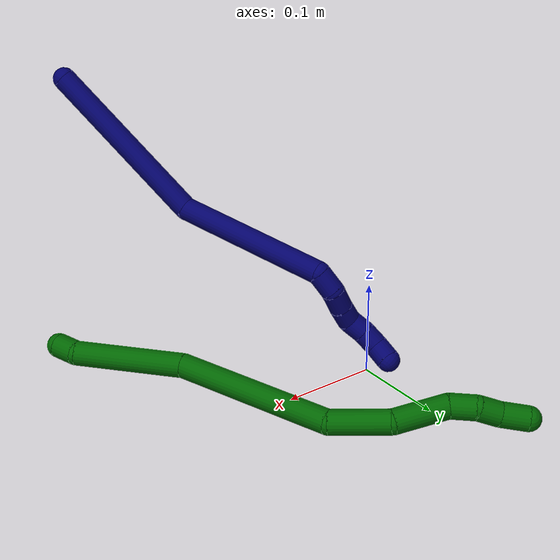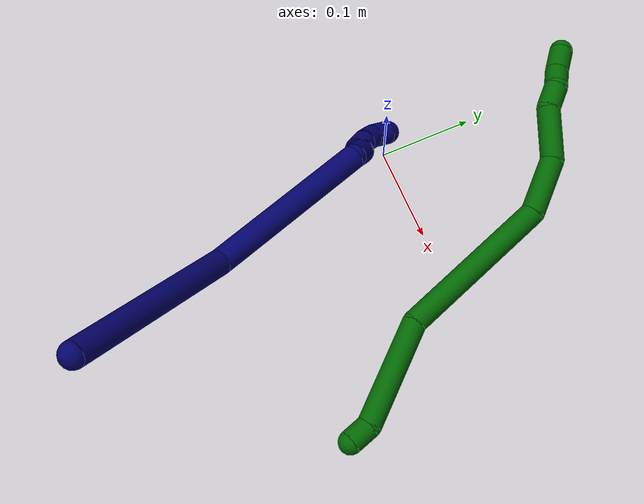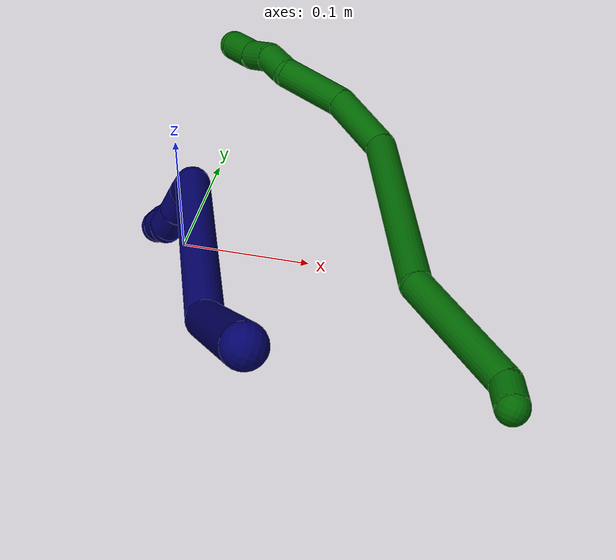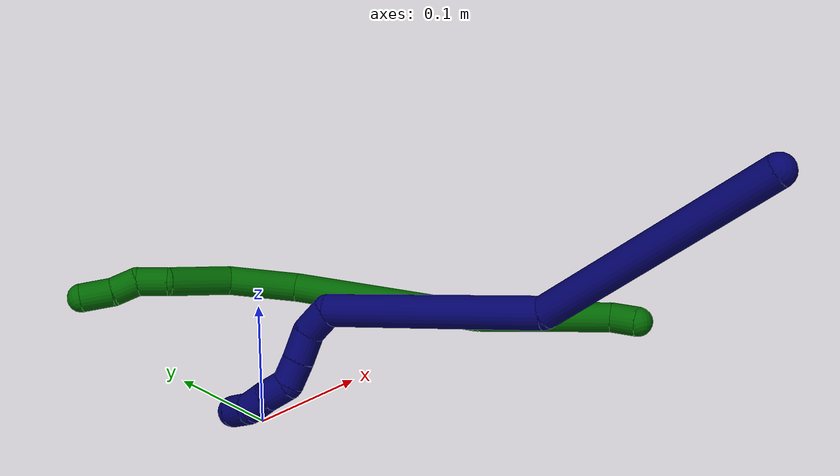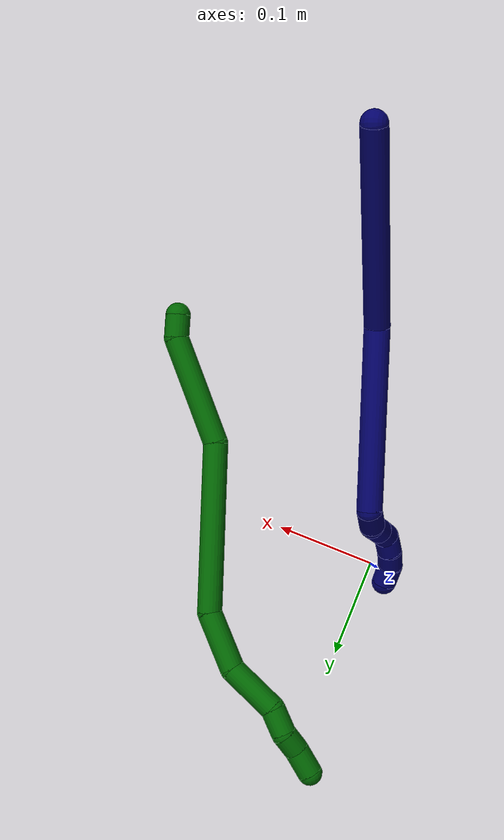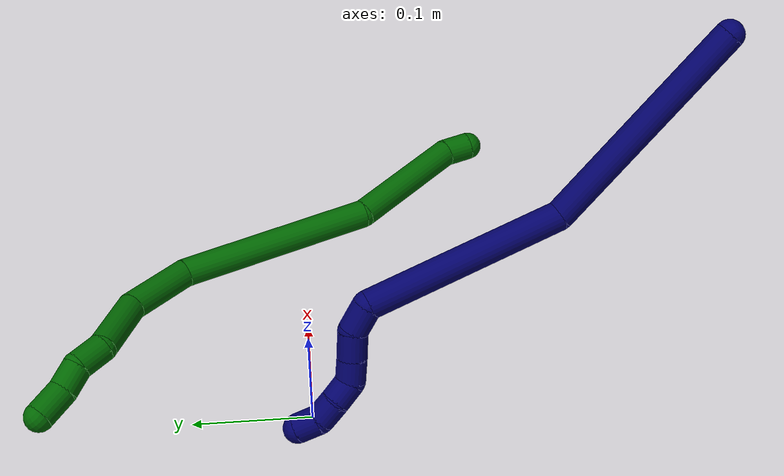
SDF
<sdf version="1.7">
 <world name="default">
  <model name="6">
   <static>0</static>
   <link name="6">
    <collision name="collision-cylinder-e_1_1_4">
     <pose>0.002653 0.00986 0.005705 -1.04624 0.228839 -0.132359</pose>
     <geometry><cylinder><radius>0.0125</radius><length>0.023394</length></cylinder></geometry>
     <surface>
      <friction><ode><mu>1.16</mu><mu2>1.16</mu2><slip1>0</slip1><slip2>0</slip2></ode></friction>
      <contact><ode><kp>1e+06</kp><kd>1</kd><max_vel>0</max_vel><min_depth>0.001</min_depth></ode></contact>
     </surface>
    </collision>
    <visual name="visual-cylinder-e_1_1_4">
     <pose>0.002653 0.00986 0.005705 -1.04624 0.228839 -0.132359</pose>
     <geometry><cylinder><radius>0.0125</radius><length>0.023394</length></cylinder></geometry>
     <material><ambient>0 0.392157 0.003922 1</ambient></material>
    </visual>
    <collision name="collision-cylinder-e_2_4_5">
     <pose>-0.001736 0.073071 0.026947 -1.28743 -0.126075 0.094653</pose>
     <geometry><cylinder><radius>0.0125</radius><length>0.112023</length></cylinder></geometry>
     <surface>
      <friction><ode><mu>1.16</mu><mu2>1.16</mu2><slip1>0</slip1><slip2>0</slip2></ode></friction>
      <contact><ode><kp>1e+06</kp><kd>1</kd><max_vel>0</max_vel><min_depth>0.001</min_depth></ode></contact>
     </surface>
    </collision>
    <visual name="visual-cylinder-e_2_4_5">
     <pose>-0.001736 0.073071 0.026947 -1.28743 -0.126075 0.094653</pose>
     <geometry><cylinder><radius>0.0125</radius><length>0.112023</length></cylinder></geometry>
     <material><ambient>0 0.392157 0.003922 1</ambient></material>
    </visual>
    <collision name="collision-cylinder-e_3_5_6">
     <pose>0.007842 0.199363 0.083477 -1.05878 0.196094 -0.114976</pose>
     <geometry><cylinder><radius>0.0125</radius><length>0.170613</length></cylinder></geometry>
     <surface>
      <friction><ode><mu>1.16</mu><mu2>1.16</mu2><slip1>0</slip1><slip2>0</slip2></ode></friction>
      <contact><ode><kp>1e+06</kp><kd>1</kd><max_vel>0</max_vel><min_depth>0.001</min_depth></ode></contact>
     </surface>
    </collision>
    <visual name="visual-cylinder-e_3_5_6">
     <pose>0.007842 0.199363 0.083477 -1.05878 0.196094 -0.114976</pose>
     <geometry><cylinder><radius>0.0125</radius><length>0.170613</length></cylinder></geometry>
     <material><ambient>0 0.392157 0.003922 1</ambient></material>
    </visual>
    <collision name="collision-cylinder-e_4_6_7">
     <pose>0.01745 0.299986 0.134881 -1.21108 -0.232826 0.161565</pose>
     <geometry><cylinder><radius>0.0125</radius><length>0.060787</length></cylinder></geometry>
     <surface>
      <friction><ode><mu>1.16</mu><mu2>1.16</mu2><slip1>0</slip1><slip2>0</slip2></ode></friction>
      <contact><ode><kp>1e+06</kp><kd>1</kd><max_vel>0</max_vel><min_depth>0.001</min_depth></ode></contact>
     </surface>
    </collision>
    <visual name="visual-cylinder-e_4_6_7">
     <pose>0.01745 0.299986 0.134881 -1.21108 -0.232826 0.161565</pose>
     <geometry><cylinder><radius>0.0125</radius><length>0.060787</length></cylinder></geometry>
     <material><ambient>0 0.392157 0.003922 1</ambient></material>
    </visual>
    <collision name="collision-cylinder-e_5_7_8">
     <pose>-0.005048 0.350609 0.147996 -1.45343 -0.590543 0.528182</pose>
     <geometry><cylinder><radius>0.0125</radius><length>0.055624</length></cylinder></geometry>
     <surface>
      <friction><ode><mu>1.16</mu><mu2>1.16</mu2><slip1>0</slip1><slip2>0</slip2></ode></friction>
      <contact><ode><kp>1e+06</kp><kd>1</kd><max_vel>0</max_vel><min_depth>0.001</min_depth></ode></contact>
     </surface>
    </collision>
    <visual name="visual-cylinder-e_5_7_8">
     <pose>-0.005048 0.350609 0.147996 -1.45343 -0.590543 0.528182</pose>
     <geometry><cylinder><radius>0.0125</radius><length>0.055624</length></cylinder></geometry>
     <material><ambient>0 0.392157 0.003922 1</ambient></material>
    </visual>
    <collision name="collision-cylinder-e_6_8_9">
     <pose>-0.022995 0.386246 0.15423 -1.29966 -0.184625 0.140472</pose>
     <geometry><cylinder><radius>0.0125</radius><length>0.026807</length></cylinder></geometry>
     <surface>
      <friction><ode><mu>1.16</mu><mu2>1.16</mu2><slip1>0</slip1><slip2>0</slip2></ode></friction>
      <contact><ode><kp>1e+06</kp><kd>1</kd><max_vel>0</max_vel><min_depth>0.001</min_depth></ode></contact>
     </surface>
    </collision>
    <visual name="visual-cylinder-e_6_8_9">
     <pose>-0.022995 0.386246 0.15423 -1.29966 -0.184625 0.140472</pose>
     <geometry><cylinder><radius>0.0125</radius><length>0.026807</length></cylinder></geometry>
     <material><ambient>0 0.392157 0.003922 1</ambient></material>
    </visual>
    <collision name="collision-cylinder-e_7_9_10">
     <pose>-0.026661 0.410181 0.156099 -1.71744 -0.105686 0.122404</pose>
     <geometry><cylinder><radius>0.0125</radius><length>0.022852</length></cylinder></geometry>
     <surface>
      <friction><ode><mu>1.16</mu><mu2>1.16</mu2><slip1>0</slip1><slip2>0</slip2></ode></friction>
      <contact><ode><kp>1e+06</kp><kd>1</kd><max_vel>0</max_vel><min_depth>0.001</min_depth></ode></contact>
     </surface>
    </collision>
    <visual name="visual-cylinder-e_7_9_10">
     <pose>-0.026661 0.410181 0.156099 -1.71744 -0.105686 0.122404</pose>
     <geometry><cylinder><radius>0.0125</radius><length>0.022852</length></cylinder></geometry>
     <material><ambient>0 0.392157 0.003922 1</ambient></material>
    </visual>
    <collision name="collision-cylinder-e_8_10_2">
     <pose>-0.030156 0.435142 0.155486 -1.49457 -0.16486 0.152798</pose>
     <geometry><cylinder><radius>0.0125</radius><length>0.0279</length></cylinder></geometry>
     <surface>
      <friction><ode><mu>1.16</mu><mu2>1.16</mu2><slip1>0</slip1><slip2>0</slip2></ode></friction>
      <contact><ode><kp>1e+06</kp><kd>1</kd><max_vel>0</max_vel><min_depth>0.001</min_depth></ode></contact>
     </surface>
    </collision>
    <visual name="visual-cylinder-e_8_10_2">
     <pose>-0.030156 0.435142 0.155486 -1.49457 -0.16486 0.152798</pose>
     <geometry><cylinder><radius>0.0125</radius><length>0.0279</length></cylinder></geometry>
     <material><ambient>0 0.392157 0.003922 1</ambient></material>
    </visual>
    <collision name="collision-sphere-2">
     <pose>-0.032445 0.448863 0.156534 0 -0 0</pose>
     <geometry><sphere><radius>0.0125</radius></sphere></geometry>
     <surface>
      <friction><ode><mu>1.16</mu><mu2>1.16</mu2><slip1>0</slip1><slip2>0</slip2></ode></friction>
      <contact><ode><kp>1e+06</kp><kd>1</kd><max_vel>0</max_vel><min_depth>0.001</min_depth></ode></contact>
     </surface>
    </collision>
    <visual name="visual-sphere-2">
     <pose>-0.032445 0.448863 0.156534 0 -0 0</pose>
     <geometry><sphere><radius>0.0125</radius></sphere></geometry>
     <material><ambient>0 0.392157 0.003922 1</ambient></material>
    </visual>
    <collision name="collision-sphere-10">
     <pose>-0.027866 0.421421 0.154438 0 -0 0</pose>
     <geometry><sphere><radius>0.0125</radius></sphere></geometry>
     <surface>
      <friction><ode><mu>1.16</mu><mu2>1.16</mu2><slip1>0</slip1><slip2>0</slip2></ode></friction>
      <contact><ode><kp>1e+06</kp><kd>1</kd><max_vel>0</max_vel><min_depth>0.001</min_depth></ode></contact>
     </surface>
    </collision>
    <visual name="visual-sphere-10">
     <pose>-0.027866 0.421421 0.154438 0 -0 0</pose>
     <geometry><sphere><radius>0.0125</radius></sphere></geometry>
     <material><ambient>0 0.392157 0.003922 1</ambient></material>
    </visual>
    <collision name="collision-sphere-9">
     <pose>-0.025455 0.39894 0.157759 0 -0 0</pose>
     <geometry><sphere><radius>0.0125</radius></sphere></geometry>
     <surface>
      <friction><ode><mu>1.16</mu><mu2>1.16</mu2><slip1>0</slip1><slip2>0</slip2></ode></friction>
      <contact><ode><kp>1e+06</kp><kd>1</kd><max_vel>0</max_vel><min_depth>0.001</min_depth></ode></contact>
     </surface>
    </collision>
    <visual name="visual-sphere-9">
     <pose>-0.025455 0.39894 0.157759 0 -0 0</pose>
     <geometry><sphere><radius>0.0125</radius></sphere></geometry>
     <material><ambient>0 0.392157 0.003922 1</ambient></material>
    </visual>
    <collision name="collision-sphere-4">
     <pose>0.005307 0.01972 0.011411 0 -0 0</pose>
     <geometry><sphere><radius>0.0125</radius></sphere></geometry>
     <surface>
      <friction><ode><mu>1.16</mu><mu2>1.16</mu2><slip1>0</slip1><slip2>0</slip2></ode></friction>
      <contact><ode><kp>1e+06</kp><kd>1</kd><max_vel>0</max_vel><min_depth>0.001</min_depth></ode></contact>
     </surface>
    </collision>
    <visual name="visual-sphere-4">
     <pose>0.005307 0.01972 0.011411 0 -0 0</pose>
     <geometry><sphere><radius>0.0125</radius></sphere></geometry>
     <material><ambient>0 0.392157 0.003922 1</ambient></material>
    </visual>
    <collision name="collision-sphere-1">
     <geometry><sphere><radius>0.0125</radius></sphere></geometry>
     <surface>
      <friction><ode><mu>1.16</mu><mu2>1.16</mu2><slip1>0</slip1><slip2>0</slip2></ode></friction>
      <contact><ode><kp>1e+06</kp><kd>1</kd><max_vel>0</max_vel><min_depth>0.001</min_depth></ode></contact>
     </surface>
    </collision>
    <visual name="visual-sphere-1">
     <geometry><sphere><radius>0.0125</radius></sphere></geometry>
     <material><ambient>0 0.392157 0.003922 1</ambient></material>
    </visual>
    <collision name="collision-sphere-8">
     <pose>-0.020534 0.373552 0.150701 0 -0 0</pose>
     <geometry><sphere><radius>0.0125</radius></sphere></geometry>
     <surface>
      <friction><ode><mu>1.16</mu><mu2>1.16</mu2><slip1>0</slip1><slip2>0</slip2></ode></friction>
      <contact><ode><kp>1e+06</kp><kd>1</kd><max_vel>0</max_vel><min_depth>0.001</min_depth></ode></contact>
     </surface>
    </collision>
    <visual name="visual-sphere-8">
     <pose>-0.020534 0.373552 0.150701 0 -0 0</pose>
     <geometry><sphere><radius>0.0125</radius></sphere></geometry>
     <material><ambient>0 0.392157 0.003922 1</ambient></material>
    </visual>
    <collision name="collision-sphere-5">
     <pose>-0.008779 0.126422 0.042483 0 -0 0</pose>
     <geometry><sphere><radius>0.0125</radius></sphere></geometry>
     <surface>
      <friction><ode><mu>1.16</mu><mu2>1.16</mu2><slip1>0</slip1><slip2>0</slip2></ode></friction>
      <contact><ode><kp>1e+06</kp><kd>1</kd><max_vel>0</max_vel><min_depth>0.001</min_depth></ode></contact>
     </surface>
    </collision>
    <visual name="visual-sphere-5">
     <pose>-0.008779 0.126422 0.042483 0 -0 0</pose>
     <geometry><sphere><radius>0.0125</radius></sphere></geometry>
     <material><ambient>0 0.392157 0.003922 1</ambient></material>
    </visual>
    <collision name="collision-sphere-6">
     <pose>0.024463 0.272305 0.124471 0 -0 0</pose>
     <geometry><sphere><radius>0.0125</radius></sphere></geometry>
     <surface>
      <friction><ode><mu>1.16</mu><mu2>1.16</mu2><slip1>0</slip1><slip2>0</slip2></ode></friction>
      <contact><ode><kp>1e+06</kp><kd>1</kd><max_vel>0</max_vel><min_depth>0.001</min_depth></ode></contact>
     </surface>
    </collision>
    <visual name="visual-sphere-6">
     <pose>0.024463 0.272305 0.124471 0 -0 0</pose>
     <geometry><sphere><radius>0.0125</radius></sphere></geometry>
     <material><ambient>0 0.392157 0.003922 1</ambient></material>
    </visual>
    <collision name="collision-sphere-7">
     <pose>0.010438 0.327666 0.145291 0 -0 0</pose>
     <geometry><sphere><radius>0.0125</radius></sphere></geometry>
     <surface>
      <friction><ode><mu>1.16</mu><mu2>1.16</mu2><slip1>0</slip1><slip2>0</slip2></ode></friction>
      <contact><ode><kp>1e+06</kp><kd>1</kd><max_vel>0</max_vel><min_depth>0.001</min_depth></ode></contact>
     </surface>
    </collision>
    <visual name="visual-sphere-7">
     <pose>0.010438 0.327666 0.145291 0 -0 0</pose>
     <geometry><sphere><radius>0.0125</radius></sphere></geometry>
     <material><ambient>0 0.392157 0.003922 1</ambient></material>
    </visual>
    <inertial>
     <pose>-0.000163 0.224072 0.09173 0 -0 0</pose>
     <mass>0.5</mass>
     <inertia>
      <ixx>0.000544</ixx>
      <ixy>0</ixy>
      <ixz>0</ixz>
      <iyy>0.000274</iyy>
      <iyz>0</iyz>
      <izz>-0.000557</izz>
     </inertia>
    </inertial>
   </link>
   <pose>0.274856 -0.16079 0.049123 -0.398884 0.649668 0.566539</pose>
  </model>
  <model name="7">
   <static>0</static>
   <link name="7">
    <collision name="collision-cylinder-e_1_1_4">
     <pose>-0.087643 0.041512 0.015465 -1.21418 -1.1028 0.807469</pose>
     <geometry><cylinder><radius>0.0125</radius><length>0.196405</length></cylinder></geometry>
     <surface>
      <friction><ode><mu>1.16</mu><mu2>1.16</mu2><slip1>0</slip1><slip2>0</slip2></ode></friction>
      <contact><ode><kp>1e+06</kp><kd>1</kd><max_vel>0</max_vel><min_depth>0.001</min_depth></ode></contact>
     </surface>
    </collision>
    <visual name="visual-cylinder-e_1_1_4">
     <pose>-0.087643 0.041512 0.015465 -1.21418 -1.1028 0.807469</pose>
     <geometry><cylinder><radius>0.0125</radius><length>0.196405</length></cylinder></geometry>
     <material><ambient>0.003922 0 0.403922 1</ambient></material>
    </visual>
    <collision name="collision-cylinder-e_2_4_5">
     <pose>-0.262282 0.077887 0.032055 1.35509 -1.51043 -1.2965</pose>
     <geometry><cylinder><radius>0.0125</radius><length>0.174307</length></cylinder></geometry>
     <surface>
      <friction><ode><mu>1.16</mu><mu2>1.16</mu2><slip1>0</slip1><slip2>0</slip2></ode></friction>
      <contact><ode><kp>1e+06</kp><kd>1</kd><max_vel>0</max_vel><min_depth>0.001</min_depth></ode></contact>
     </surface>
    </collision>
    <visual name="visual-cylinder-e_2_4_5">
     <pose>-0.262282 0.077887 0.032055 1.35509 -1.51043 -1.2965</pose>
     <geometry><cylinder><radius>0.0125</radius><length>0.174307</length></cylinder></geometry>
     <material><ambient>0.003922 0 0.403922 1</ambient></material>
    </visual>
    <collision name="collision-cylinder-e_3_5_6">
     <pose>-0.358702 0.080394 0.034937 -1.34485 -0.876838 0.714563</pose>
     <geometry><cylinder><radius>0.0125</radius><length>0.024523</length></cylinder></geometry>
     <surface>
      <friction><ode><mu>1.16</mu><mu2>1.16</mu2><slip1>0</slip1><slip2>0</slip2></ode></friction>
      <contact><ode><kp>1e+06</kp><kd>1</kd><max_vel>0</max_vel><min_depth>0.001</min_depth></ode></contact>
     </surface>
    </collision>
    <visual name="visual-cylinder-e_3_5_6">
     <pose>-0.358702 0.080394 0.034937 -1.34485 -0.876838 0.714563</pose>
     <geometry><cylinder><radius>0.0125</radius><length>0.024523</length></cylinder></geometry>
     <material><ambient>0.003922 0 0.403922 1</ambient></material>
    </visual>
    <collision name="collision-cylinder-e_4_6_7">
     <pose>-0.373065 0.098758 0.037308 -1.51361 -0.43093 0.407641</pose>
     <geometry><cylinder><radius>0.0125</radius><length>0.023639</length></cylinder></geometry>
     <surface>
      <friction><ode><mu>1.16</mu><mu2>1.16</mu2><slip1>0</slip1><slip2>0</slip2></ode></friction>
      <contact><ode><kp>1e+06</kp><kd>1</kd><max_vel>0</max_vel><min_depth>0.001</min_depth></ode></contact>
     </surface>
    </collision>
    <visual name="visual-cylinder-e_4_6_7">
     <pose>-0.373065 0.098758 0.037308 -1.51361 -0.43093 0.407641</pose>
     <geometry><cylinder><radius>0.0125</radius><length>0.023639</length></cylinder></geometry>
     <material><ambient>0.003922 0 0.403922 1</ambient></material>
    </visual>
    <collision name="collision-cylinder-e_5_7_8">
     <pose>-0.382779 0.118642 0.03804 -1.55789 -0.480515 0.474582</pose>
     <geometry><cylinder><radius>0.0125</radius><length>0.020667</length></cylinder></geometry>
     <surface>
      <friction><ode><mu>1.16</mu><mu2>1.16</mu2><slip1>0</slip1><slip2>0</slip2></ode></friction>
      <contact><ode><kp>1e+06</kp><kd>1</kd><max_vel>0</max_vel><min_depth>0.001</min_depth></ode></contact>
     </surface>
    </collision>
    <visual name="visual-cylinder-e_5_7_8">
     <pose>-0.382779 0.118642 0.03804 -1.55789 -0.480515 0.474582</pose>
     <geometry><cylinder><radius>0.0125</radius><length>0.020667</length></cylinder></geometry>
     <material><ambient>0.003922 0 0.403922 1</ambient></material>
    </visual>
    <collision name="collision-cylinder-e_6_8_9">
     <pose>-0.396584 0.132206 0.03805 -1.59541 -1.11714 1.13939</pose>
     <geometry><cylinder><radius>0.0125</radius><length>0.02009</length></cylinder></geometry>
     <surface>
      <friction><ode><mu>1.16</mu><mu2>1.16</mu2><slip1>0</slip1><slip2>0</slip2></ode></friction>
      <contact><ode><kp>1e+06</kp><kd>1</kd><max_vel>0</max_vel><min_depth>0.001</min_depth></ode></contact>
     </surface>
    </collision>
    <visual name="visual-cylinder-e_6_8_9">
     <pose>-0.396584 0.132206 0.03805 -1.59541 -1.11714 1.13939</pose>
     <geometry><cylinder><radius>0.0125</radius><length>0.02009</length></cylinder></geometry>
     <material><ambient>0.003922 0 0.403922 1</ambient></material>
    </visual>
    <collision name="collision-cylinder-e_7_9_10">
     <pose>-0.41436 0.141262 0.039382 -1.27074 -1.06252 0.817742</pose>
     <geometry><cylinder><radius>0.0125</radius><length>0.020025</length></cylinder></geometry>
     <surface>
      <friction><ode><mu>1.16</mu><mu2>1.16</mu2><slip1>0</slip1><slip2>0</slip2></ode></friction>
      <contact><ode><kp>1e+06</kp><kd>1</kd><max_vel>0</max_vel><min_depth>0.001</min_depth></ode></contact>
     </surface>
    </collision>
    <visual name="visual-cylinder-e_7_9_10">
     <pose>-0.41436 0.141262 0.039382 -1.27074 -1.06252 0.817742</pose>
     <geometry><cylinder><radius>0.0125</radius><length>0.020025</length></cylinder></geometry>
     <material><ambient>0.003922 0 0.403922 1</ambient></material>
    </visual>
    <collision name="collision-cylinder-e_8_10_2">
     <pose>-0.432517 0.146752 0.044592 -0.218125 -1.18144 0.146595</pose>
     <geometry><cylinder><radius>0.0125</radius><length>0.020344</length></cylinder></geometry>
     <surface>
      <friction><ode><mu>1.16</mu><mu2>1.16</mu2><slip1>0</slip1><slip2>0</slip2></ode></friction>
      <contact><ode><kp>1e+06</kp><kd>1</kd><max_vel>0</max_vel><min_depth>0.001</min_depth></ode></contact>
     </surface>
    </collision>
    <visual name="visual-cylinder-e_8_10_2">
     <pose>-0.432517 0.146752 0.044592 -0.218125 -1.18144 0.146595</pose>
     <geometry><cylinder><radius>0.0125</radius><length>0.020344</length></cylinder></geometry>
     <material><ambient>0.003922 0 0.403922 1</ambient></material>
    </visual>
    <collision name="collision-sphere-2">
     <pose>-0.441928 0.147588 0.048362 0 -0 0</pose>
     <geometry><sphere><radius>0.0125</radius></sphere></geometry>
     <surface>
      <friction><ode><mu>1.16</mu><mu2>1.16</mu2><slip1>0</slip1><slip2>0</slip2></ode></friction>
      <contact><ode><kp>1e+06</kp><kd>1</kd><max_vel>0</max_vel><min_depth>0.001</min_depth></ode></contact>
     </surface>
    </collision>
    <visual name="visual-sphere-2">
     <pose>-0.441928 0.147588 0.048362 0 -0 0</pose>
     <geometry><sphere><radius>0.0125</radius></sphere></geometry>
     <material><ambient>0.003922 0 0.403922 1</ambient></material>
    </visual>
    <collision name="collision-sphere-10">
     <pose>-0.423107 0.145917 0.040822 0 -0 0</pose>
     <geometry><sphere><radius>0.0125</radius></sphere></geometry>
     <surface>
      <friction><ode><mu>1.16</mu><mu2>1.16</mu2><slip1>0</slip1><slip2>0</slip2></ode></friction>
      <contact><ode><kp>1e+06</kp><kd>1</kd><max_vel>0</max_vel><min_depth>0.001</min_depth></ode></contact>
     </surface>
    </collision>
    <visual name="visual-sphere-10">
     <pose>-0.423107 0.145917 0.040822 0 -0 0</pose>
     <geometry><sphere><radius>0.0125</radius></sphere></geometry>
     <material><ambient>0.003922 0 0.403922 1</ambient></material>
    </visual>
    <collision name="collision-sphere-9">
     <pose>-0.405613 0.136607 0.037942 0 -0 0</pose>
     <geometry><sphere><radius>0.0125</radius></sphere></geometry>
     <surface>
      <friction><ode><mu>1.16</mu><mu2>1.16</mu2><slip1>0</slip1><slip2>0</slip2></ode></friction>
      <contact><ode><kp>1e+06</kp><kd>1</kd><max_vel>0</max_vel><min_depth>0.001</min_depth></ode></contact>
     </surface>
    </collision>
    <visual name="visual-sphere-9">
     <pose>-0.405613 0.136607 0.037942 0 -0 0</pose>
     <geometry><sphere><radius>0.0125</radius></sphere></geometry>
     <material><ambient>0.003922 0 0.403922 1</ambient></material>
    </visual>
    <collision name="collision-sphere-4">
     <pose>-0.175287 0.083023 0.03093 0 -0 0</pose>
     <geometry><sphere><radius>0.0125</radius></sphere></geometry>
     <surface>
      <friction><ode><mu>1.16</mu><mu2>1.16</mu2><slip1>0</slip1><slip2>0</slip2></ode></friction>
      <contact><ode><kp>1e+06</kp><kd>1</kd><max_vel>0</max_vel><min_depth>0.001</min_depth></ode></contact>
     </surface>
    </collision>
    <visual name="visual-sphere-4">
     <pose>-0.175287 0.083023 0.03093 0 -0 0</pose>
     <geometry><sphere><radius>0.0125</radius></sphere></geometry>
     <material><ambient>0.003922 0 0.403922 1</ambient></material>
    </visual>
    <collision name="collision-sphere-1">
     <geometry><sphere><radius>0.0125</radius></sphere></geometry>
     <surface>
      <friction><ode><mu>1.16</mu><mu2>1.16</mu2><slip1>0</slip1><slip2>0</slip2></ode></friction>
      <contact><ode><kp>1e+06</kp><kd>1</kd><max_vel>0</max_vel><min_depth>0.001</min_depth></ode></contact>
     </surface>
    </collision>
    <visual name="visual-sphere-1">
     <geometry><sphere><radius>0.0125</radius></sphere></geometry>
     <material><ambient>0.003922 0 0.403922 1</ambient></material>
    </visual>
    <collision name="collision-sphere-8">
     <pose>-0.387555 0.127805 0.038158 0 -0 0</pose>
     <geometry><sphere><radius>0.0125</radius></sphere></geometry>
     <surface>
      <friction><ode><mu>1.16</mu><mu2>1.16</mu2><slip1>0</slip1><slip2>0</slip2></ode></friction>
      <contact><ode><kp>1e+06</kp><kd>1</kd><max_vel>0</max_vel><min_depth>0.001</min_depth></ode></contact>
     </surface>
    </collision>
    <visual name="visual-sphere-8">
     <pose>-0.387555 0.127805 0.038158 0 -0 0</pose>
     <geometry><sphere><radius>0.0125</radius></sphere></geometry>
     <material><ambient>0.003922 0 0.403922 1</ambient></material>
    </visual>
    <collision name="collision-sphere-5">
     <pose>-0.349276 0.072751 0.03318 0 -0 0</pose>
     <geometry><sphere><radius>0.0125</radius></sphere></geometry>
     <surface>
      <friction><ode><mu>1.16</mu><mu2>1.16</mu2><slip1>0</slip1><slip2>0</slip2></ode></friction>
      <contact><ode><kp>1e+06</kp><kd>1</kd><max_vel>0</max_vel><min_depth>0.001</min_depth></ode></contact>
     </surface>
    </collision>
    <visual name="visual-sphere-5">
     <pose>-0.349276 0.072751 0.03318 0 -0 0</pose>
     <geometry><sphere><radius>0.0125</radius></sphere></geometry>
     <material><ambient>0.003922 0 0.403922 1</ambient></material>
    </visual>
    <collision name="collision-sphere-6">
     <pose>-0.368128 0.088037 0.036694 0 -0 0</pose>
     <geometry><sphere><radius>0.0125</radius></sphere></geometry>
     <surface>
      <friction><ode><mu>1.16</mu><mu2>1.16</mu2><slip1>0</slip1><slip2>0</slip2></ode></friction>
      <contact><ode><kp>1e+06</kp><kd>1</kd><max_vel>0</max_vel><min_depth>0.001</min_depth></ode></contact>
     </surface>
    </collision>
    <visual name="visual-sphere-6">
     <pose>-0.368128 0.088037 0.036694 0 -0 0</pose>
     <geometry><sphere><radius>0.0125</radius></sphere></geometry>
     <material><ambient>0.003922 0 0.403922 1</ambient></material>
    </visual>
    <collision name="collision-sphere-7">
     <pose>-0.378002 0.10948 0.037922 0 -0 0</pose>
     <geometry><sphere><radius>0.0125</radius></sphere></geometry>
     <surface>
      <friction><ode><mu>1.16</mu><mu2>1.16</mu2><slip1>0</slip1><slip2>0</slip2></ode></friction>
      <contact><ode><kp>1e+06</kp><kd>1</kd><max_vel>0</max_vel><min_depth>0.001</min_depth></ode></contact>
     </surface>
    </collision>
    <visual name="visual-sphere-7">
     <pose>-0.378002 0.10948 0.037922 0 -0 0</pose>
     <geometry><sphere><radius>0.0125</radius></sphere></geometry>
     <material><ambient>0.003922 0 0.403922 1</ambient></material>
    </visual>
    <inertial>
     <pose>-0.227043 0.073915 0.02722 0 -0 0</pose>
     <mass>0.5</mass>
     <inertia>
      <ixx>0.000363</ixx>
      <ixy>0</ixy>
      <ixz>0</ixz>
      <iyy>0.00119</iyy>
      <iyz>0</iyz>
      <izz>0.000779</izz>
     </inertia>
    </inertial>
   </link>
   <pose>0.15298 -0.345946 0.258912 -2.04196 -0.223491 -1.18401</pose>
  </model>
 </world>
</sdf>
